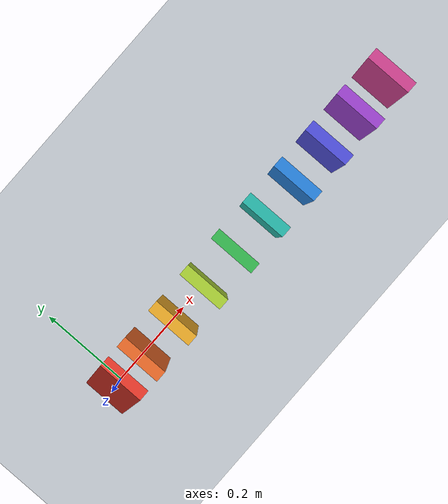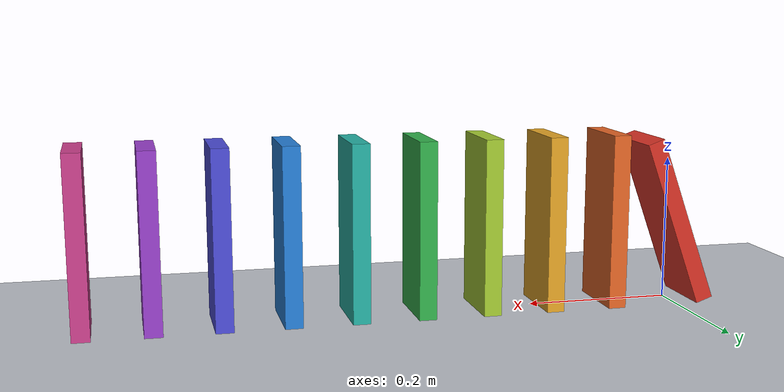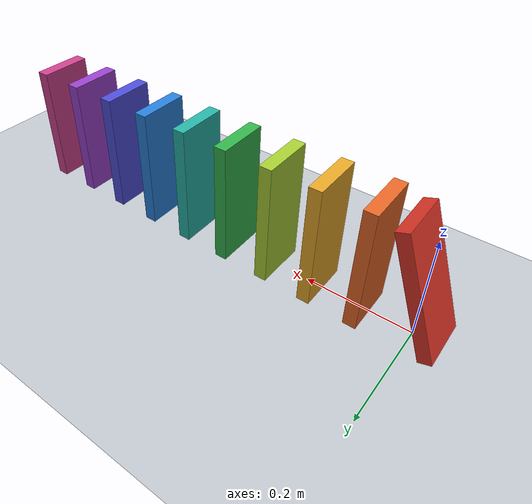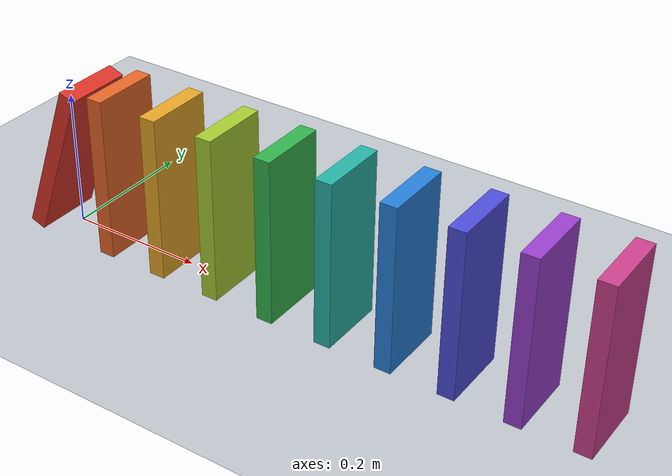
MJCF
<mujoco model="ten_domino_chain">
  <compiler angle="degree"/>
  <option timestep="0.002" gravity="0 0 -9.81" integrator="implicitfast" solver="Newton" iterations="100" tolerance="1e-10"/>
  <size nconmax="200" njmax="1000"/>
  <statistic center="0.4 0 0.12" extent="1.1"/>

  <worldbody>
    <light name="overhead" pos="0.4 -0.5 2" dir="0 0 -1" diffuse="0.8 0.8 0.8"/>
    <geom name="floor" type="plane" pos="0 0 0" size="2 1 0.1" friction="0.9 0.005 0.0001" solref="0.005 1" solimp="0.95 0.99 0.001" rgba="0.75 0.77 0.8 1"/>

    <!-- Half-sizes: thickness 0.012 m, width 0.05 m, height 0.12 m. -->
    <!-- Domino 1's height places its lowest edge exactly on the floor. -->
    <body name="domino1" pos="0 0 0.116867356" quat="0.984807753 0 0.173648178 0">
      <freejoint name="domino1_free"/>
      <geom name="domino1_geom" type="box" size="0.012 0.05 0.12" mass="0.2" friction="0.9 0.005 0.0001" solref="0.005 1" solimp="0.95 0.99 0.001" rgba="0.85 0.2 0.15 1"/>
    </body>

    <body name="domino2" pos="0.09 0 0.12">
      <freejoint name="domino2_free"/>
      <geom name="domino2_geom" type="box" size="0.012 0.05 0.12" mass="0.2" friction="0.9 0.005 0.0001" solref="0.005 1" solimp="0.95 0.99 0.001" rgba="0.9 0.4 0.15 1"/>
    </body>

    <body name="domino3" pos="0.18 0 0.12">
      <freejoint name="domino3_free"/>
      <geom name="domino3_geom" type="box" size="0.012 0.05 0.12" mass="0.2" friction="0.9 0.005 0.0001" solref="0.005 1" solimp="0.95 0.99 0.001" rgba="0.9 0.65 0.15 1"/>
    </body>

    <body name="domino4" pos="0.27 0 0.12">
      <freejoint name="domino4_free"/>
      <geom name="domino4_geom" type="box" size="0.012 0.05 0.12" mass="0.2" friction="0.9 0.005 0.0001" solref="0.005 1" solimp="0.95 0.99 0.001" rgba="0.65 0.8 0.2 1"/>
    </body>

    <body name="domino5" pos="0.36 0 0.12">
      <freejoint name="domino5_free"/>
      <geom name="domino5_geom" type="box" size="0.012 0.05 0.12" mass="0.2" friction="0.9 0.005 0.0001" solref="0.005 1" solimp="0.95 0.99 0.001" rgba="0.2 0.7 0.3 1"/>
    </body>

    <body name="domino6" pos="0.45 0 0.12">
      <freejoint name="domino6_free"/>
      <geom name="domino6_geom" type="box" size="0.012 0.05 0.12" mass="0.2" friction="0.9 0.005 0.0001" solref="0.005 1" solimp="0.95 0.99 0.001" rgba="0.15 0.7 0.65 1"/>
    </body>

    <body name="domino7" pos="0.54 0 0.12">
      <freejoint name="domino7_free"/>
      <geom name="domino7_geom" type="box" size="0.012 0.05 0.12" mass="0.2" friction="0.9 0.005 0.0001" solref="0.005 1" solimp="0.95 0.99 0.001" rgba="0.15 0.5 0.85 1"/>
    </body>

    <body name="domino8" pos="0.63 0 0.12">
      <freejoint name="domino8_free"/>
      <geom name="domino8_geom" type="box" size="0.012 0.05 0.12" mass="0.2" friction="0.9 0.005 0.0001" solref="0.005 1" solimp="0.95 0.99 0.001" rgba="0.3 0.3 0.85 1"/>
    </body>

    <body name="domino9" pos="0.72 0 0.12">
      <freejoint name="domino9_free"/>
      <geom name="domino9_geom" type="box" size="0.012 0.05 0.12" mass="0.2" friction="0.9 0.005 0.0001" solref="0.005 1" solimp="0.95 0.99 0.001" rgba="0.6 0.25 0.8 1"/>
    </body>

    <body name="domino10" pos="0.81 0 0.12">
      <freejoint name="domino10_free"/>
      <geom name="domino10_geom" type="box" size="0.012 0.05 0.12" mass="0.2" friction="0.9 0.005 0.0001" solref="0.005 1" solimp="0.95 0.99 0.001" rgba="0.8 0.25 0.55 1"/>
    </body>
  </worldbody>
</mujoco>
